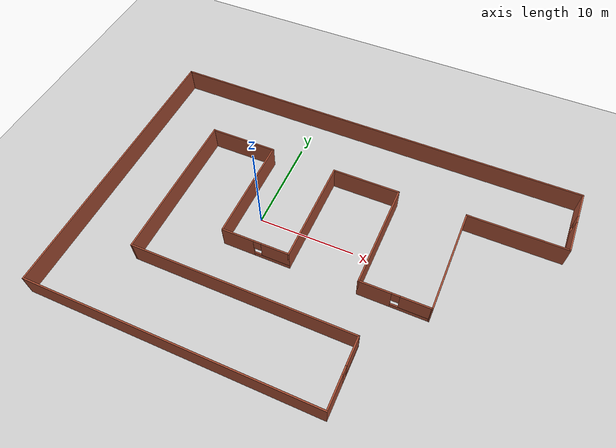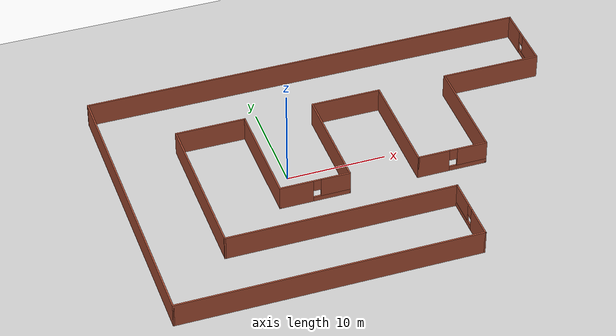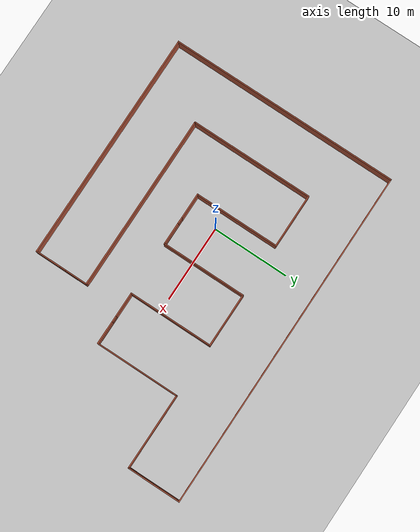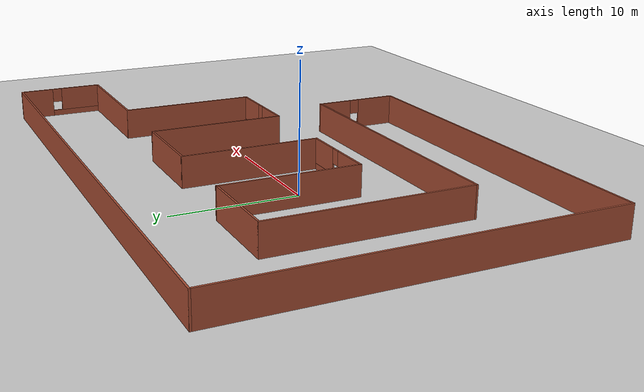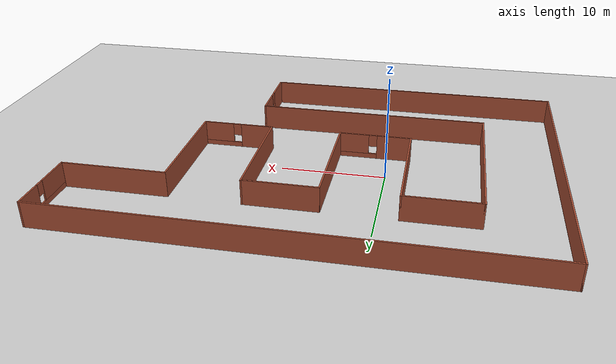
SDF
<sdf version="1.6">
 <world name="default">
  <light name="sun" type="directional">
   <pose>0 0 10 0 -0 0</pose>
   <diffuse>0.8 0.8 0.8 1</diffuse>
   <specular>0.2 0.2 0.2 1</specular>
   <attenuation>
    <range>1000</range>
    <constant>0.9</constant>
    <linear>0.01</linear>
    <quadratic>0.001</quadratic>
   </attenuation>
   <direction>-0.5 0.1 -0.9</direction>
  </light>
  <model name="ground_plane">
   <static>1</static>
   <link name="link">
    <collision name="collision">
     <geometry><plane><normal>0 0 1</normal><size>100 100</size></plane></geometry>
     <surface>
      <contact><collide_bitmask>65535</collide_bitmask></contact>
      <friction><ode><mu>100</mu><mu2>50</mu2></ode></friction>
     </surface>
    </collision>
    <visual name="visual">
     <cast_shadows>0</cast_shadows>
     <geometry><plane><normal>0 0 1</normal><size>100 100</size></plane></geometry>
     <material>
      <script><uri>file://media/materials/scripts/gazebo.material</uri><name>Gazebo/Grey</name></script>
     </material>
    </visual>
   </link>
  </model>
  <gravity>0 0 -9.8</gravity>
  <magnetic_field>6e-06 2.3e-05 -4.2e-05</magnetic_field>
  <atmosphere type="adiabatic"/>
  <physics name="default_physics" default="0" type="ode">
   <max_step_size>0.001</max_step_size>
   <real_time_factor>1</real_time_factor>
   <real_time_update_rate>1000</real_time_update_rate>
  </physics>
  <scene><ambient>0.4 0.4 0.4 1</ambient><background>0.7 0.7 0.7 1</background><shadows>1</shadows></scene>
  <spherical_coordinates>
   <surface_model>EARTH_WGS84</surface_model>
   <latitude_deg>0</latitude_deg>
   <longitude_deg>0</longitude_deg>
   <elevation>0</elevation>
   <heading_deg>0</heading_deg>
  </spherical_coordinates>
  <model name="building">
   <pose>6.48049 -0.882389 0 0 -0 0</pose>
   <link name="Wall_0">
    <collision name="Wall_0_Collision">
     <geometry><box><size>30.15 0.15 2.5</size></box></geometry>
     <pose>0 0 1.25 0 -0 0</pose>
    </collision>
    <visual name="Wall_0_Visual">
     <pose>0 0 1.25 0 -0 0</pose>
     <geometry><box><size>30.15 0.15 2.5</size></box></geometry>
     <material>
      <script><uri>file://media/materials/scripts/gazebo.material</uri><name>Gazebo/Bricks</name></script>
      <ambient>1 1 1 1</ambient>
     </material>
     <meta><layer>0</layer></meta>
    </visual>
    <pose>-22.5 0 0 0 0 -1.5708</pose>
   </link>
   <link name="Wall_11">
    <collision name="Wall_11_Collision">
     <geometry><box><size>7.15 0.15 2.5</size></box></geometry>
     <pose>0 0 1.25 0 -0 0</pose>
    </collision>
    <visual name="Wall_11_Visual">
     <pose>0 0 1.25 0 -0 0</pose>
     <geometry><box><size>7.15 0.15 2.5</size></box></geometry>
     <material>
      <script><uri>file://media/materials/scripts/gazebo.material</uri><name>Gazebo/Bricks</name></script>
      <ambient>1 1 1 1</ambient>
     </material>
     <meta><layer>0</layer></meta>
    </visual>
    <pose>-12 8 0 0 -0 0</pose>
   </link>
   <link name="Wall_13">
    <collision name="Wall_13_Collision">
     <geometry><box><size>11.15 0.15 2.5</size></box></geometry>
     <pose>0 0 1.25 0 -0 0</pose>
    </collision>
    <visual name="Wall_13_Visual">
     <pose>0 0 1.25 0 -0 0</pose>
     <geometry><box><size>11.15 0.15 2.5</size></box></geometry>
     <material>
      <script><uri>file://media/materials/scripts/gazebo.material</uri><name>Gazebo/Bricks</name></script>
      <ambient>1 1 1 1</ambient>
     </material>
     <meta><layer>0</layer></meta>
    </visual>
    <pose>-8.5 2.5 0 0 0 -1.5708</pose>
   </link>
   <link name="Wall_15">
    <pose>-5 -3 0 0 -0 0</pose>
    <visual name="Wall_15_Visual_0">
     <pose>-1.88147 0 1.25 0 -0 0</pose>
     <geometry><box><size>3.38706 0.15 2.5</size></box></geometry>
     <material>
      <script><uri>file://media/materials/scripts/gazebo.material</uri><name>Gazebo/Bricks</name></script>
      <ambient>1 1 1 1</ambient>
     </material>
     <meta><layer>0</layer></meta>
    </visual>
    <collision name="Wall_15_Collision_0">
     <geometry><box><size>3.38706 0.15 2.5</size></box></geometry>
     <pose>-1.88147 0 1.25 0 -0 0</pose>
    </collision>
    <visual name="Wall_15_Visual_1">
     <pose>1.69353 0 0.25 0 -0 0</pose>
     <geometry><box><size>3.76294 0.15 0.5</size></box></geometry>
     <material>
      <script><uri>file://media/materials/scripts/gazebo.material</uri><name>Gazebo/Bricks</name></script>
      <ambient>1 1 1 1</ambient>
     </material>
     <meta><layer>0</layer></meta>
    </visual>
    <collision name="Wall_15_Collision_1">
     <geometry><box><size>3.76294 0.15 0.5</size></box></geometry>
     <pose>1.69353 0 0.25 0 -0 0</pose>
    </collision>
    <visual name="Wall_15_Visual_2">
     <pose>2.09353 0 1.5 0 -0 0</pose>
     <geometry><box><size>2.96294 0.15 2</size></box></geometry>
     <material>
      <script><uri>file://media/materials/scripts/gazebo.material</uri><name>Gazebo/Bricks</name></script>
      <ambient>1 1 1 1</ambient>
     </material>
     <meta><layer>0</layer></meta>
    </visual>
    <collision name="Wall_15_Collision_2">
     <geometry><box><size>2.96294 0.15 2</size></box></geometry>
     <pose>2.09353 0 1.5 0 -0 0</pose>
    </collision>
    <visual name="Wall_15_Visual_3">
     <pose>0.212058 0 1.9 0 -0 0</pose>
     <geometry><box><size>0.8 0.15 1.2</size></box></geometry>
     <material>
      <script><uri>file://media/materials/scripts/gazebo.material</uri><name>Gazebo/Bricks</name></script>
      <ambient>1 1 1 1</ambient>
     </material>
     <meta><layer>0</layer></meta>
    </visual>
    <collision name="Wall_15_Collision_3">
     <geometry><box><size>0.8 0.15 1.2</size></box></geometry>
     <pose>0.212058 0 1.9 0 -0 0</pose>
    </collision>
   </link>
   <link name="Wall_17">
    <collision name="Wall_17_Collision">
     <geometry><box><size>11.15 0.15 2.5</size></box></geometry>
     <pose>0 0 1.25 0 -0 0</pose>
    </collision>
    <visual name="Wall_17_Visual">
     <pose>0 0 1.25 0 -0 0</pose>
     <geometry><box><size>11.15 0.15 2.5</size></box></geometry>
     <material>
      <script><uri>file://media/materials/scripts/gazebo.material</uri><name>Gazebo/Bricks</name></script>
      <ambient>1 1 1 1</ambient>
     </material>
     <meta><layer>0</layer></meta>
    </visual>
    <pose>-1.5 2.5 0 0 -0 1.5708</pose>
   </link>
   <link name="Wall_19">
    <collision name="Wall_19_Collision">
     <geometry><box><size>7.15 0.15 2.5</size></box></geometry>
     <pose>0 0 1.25 0 -0 0</pose>
    </collision>
    <visual name="Wall_19_Visual">
     <pose>0 0 1.25 0 -0 0</pose>
     <geometry><box><size>7.15 0.15 2.5</size></box></geometry>
     <material>
      <script><uri>file://media/materials/scripts/gazebo.material</uri><name>Gazebo/Bricks</name></script>
      <ambient>1 1 1 1</ambient>
     </material>
     <meta><layer>0</layer></meta>
    </visual>
    <pose>2 8 0 0 -0 0</pose>
   </link>
   <link name="Wall_2">
    <collision name="Wall_2_Collision">
     <geometry><box><size>30.15 0.15 2.5</size></box></geometry>
     <pose>0 0 1.25 0 -0 0</pose>
    </collision>
    <visual name="Wall_2_Visual">
     <pose>0 0 1.25 0 -0 0</pose>
     <geometry><box><size>30.15 0.15 2.5</size></box></geometry>
     <material>
      <script><uri>file://media/materials/scripts/gazebo.material</uri><name>Gazebo/Bricks</name></script>
      <ambient>1 1 1 1</ambient>
     </material>
     <meta><layer>0</layer></meta>
    </visual>
    <pose>-7.5 -15 0 0 -0 0</pose>
   </link>
   <link name="Wall_21">
    <collision name="Wall_21_Collision">
     <geometry><box><size>11.15 0.15 2.5</size></box></geometry>
     <pose>0 0 1.25 0 -0 0</pose>
    </collision>
    <visual name="Wall_21_Visual">
     <pose>0 0 1.25 0 -0 0</pose>
     <geometry><box><size>11.15 0.15 2.5</size></box></geometry>
     <material>
      <script><uri>file://media/materials/scripts/gazebo.material</uri><name>Gazebo/Bricks</name></script>
      <ambient>1 1 1 1</ambient>
     </material>
     <meta><layer>0</layer></meta>
    </visual>
    <pose>5.5 2.5 0 0 0 -1.5708</pose>
   </link>
   <link name="Wall_23">
    <pose>9 -3 0 0 -0 0</pose>
    <visual name="Wall_23_Visual_0">
     <pose>-1.94046 0 1.25 0 -0 0</pose>
     <geometry><box><size>3.26909 0.15 2.5</size></box></geometry>
     <material>
      <script><uri>file://media/materials/scripts/gazebo.material</uri><name>Gazebo/Bricks</name></script>
      <ambient>1 1 1 1</ambient>
     </material>
     <meta><layer>0</layer></meta>
    </visual>
    <collision name="Wall_23_Collision_0">
     <geometry><box><size>3.26909 0.15 2.5</size></box></geometry>
     <pose>-1.94046 0 1.25 0 -0 0</pose>
    </collision>
    <visual name="Wall_23_Visual_1">
     <pose>1.63454 0 0.25 0 -0 0</pose>
     <geometry><box><size>3.88091 0.15 0.5</size></box></geometry>
     <material>
      <script><uri>file://media/materials/scripts/gazebo.material</uri><name>Gazebo/Bricks</name></script>
      <ambient>1 1 1 1</ambient>
     </material>
     <meta><layer>0</layer></meta>
    </visual>
    <collision name="Wall_23_Collision_1">
     <geometry><box><size>3.88091 0.15 0.5</size></box></geometry>
     <pose>1.63454 0 0.25 0 -0 0</pose>
    </collision>
    <visual name="Wall_23_Visual_2">
     <pose>2.03454 0 1.5 0 -0 0</pose>
     <geometry><box><size>3.08091 0.15 2</size></box></geometry>
     <material>
      <script><uri>file://media/materials/scripts/gazebo.material</uri><name>Gazebo/Bricks</name></script>
      <ambient>1 1 1 1</ambient>
     </material>
     <meta><layer>0</layer></meta>
    </visual>
    <collision name="Wall_23_Collision_2">
     <geometry><box><size>3.08091 0.15 2</size></box></geometry>
     <pose>2.03454 0 1.5 0 -0 0</pose>
    </collision>
    <visual name="Wall_23_Visual_3">
     <pose>0.094088 0 1.9 0 -0 0</pose>
     <geometry><box><size>0.8 0.15 1.2</size></box></geometry>
     <material>
      <script><uri>file://media/materials/scripts/gazebo.material</uri><name>Gazebo/Bricks</name></script>
      <ambient>1 1 1 1</ambient>
     </material>
     <meta><layer>0</layer></meta>
    </visual>
    <collision name="Wall_23_Collision_3">
     <geometry><box><size>0.8 0.15 1.2</size></box></geometry>
     <pose>0.094088 0 1.9 0 -0 0</pose>
    </collision>
   </link>
   <link name="Wall_25">
    <collision name="Wall_25_Collision">
     <geometry><box><size>11.15 0.15 2.5</size></box></geometry>
     <pose>0 0 1.25 0 -0 0</pose>
    </collision>
    <visual name="Wall_25_Visual">
     <pose>0 0 1.25 0 -0 0</pose>
     <geometry><box><size>11.15 0.15 2.5</size></box></geometry>
     <material>
      <script><uri>file://media/materials/scripts/gazebo.material</uri><name>Gazebo/Bricks</name></script>
      <ambient>1 1 1 1</ambient>
     </material>
     <meta><layer>0</layer></meta>
    </visual>
    <pose>12.5 2.5 0 0 -0 1.5708</pose>
   </link>
   <link name="Wall_27">
    <collision name="Wall_27_Collision">
     <geometry><box><size>10.15 0.15 2.5</size></box></geometry>
     <pose>0 0 1.25 0 -0 0</pose>
    </collision>
    <visual name="Wall_27_Visual">
     <pose>0 0 1.25 0 -0 0</pose>
     <geometry><box><size>10.15 0.15 2.5</size></box></geometry>
     <material>
      <script><uri>file://media/materials/scripts/gazebo.material</uri><name>Gazebo/Bricks</name></script>
      <ambient>1 1 1 1</ambient>
     </material>
     <meta><layer>0</layer></meta>
    </visual>
    <pose>17.5 8 0 0 -0 0</pose>
   </link>
   <link name="Wall_29">
    <pose>22.5 11.5 0 0 0 -1.5708</pose>
    <visual name="Wall_29_Visual_0">
     <pose>-2.15998 0 1.25 0 -0 0</pose>
     <geometry><box><size>2.83005 0.15 2.5</size></box></geometry>
     <material>
      <script><uri>file://media/materials/scripts/gazebo.material</uri><name>Gazebo/Bricks</name></script>
      <ambient>1 1 1 1</ambient>
     </material>
     <meta><layer>0</layer></meta>
    </visual>
    <collision name="Wall_29_Collision_0">
     <geometry><box><size>2.83005 0.15 2.5</size></box></geometry>
     <pose>-2.15998 0 1.25 0 -0 0</pose>
    </collision>
    <visual name="Wall_29_Visual_1">
     <pose>1.41502 0 0.25 0 -0 0</pose>
     <geometry><box><size>4.31995 0.15 0.5</size></box></geometry>
     <material>
      <script><uri>file://media/materials/scripts/gazebo.material</uri><name>Gazebo/Bricks</name></script>
      <ambient>1 1 1 1</ambient>
     </material>
     <meta><layer>0</layer></meta>
    </visual>
    <collision name="Wall_29_Collision_1">
     <geometry><box><size>4.31995 0.15 0.5</size></box></geometry>
     <pose>1.41502 0 0.25 0 -0 0</pose>
    </collision>
    <visual name="Wall_29_Visual_2">
     <pose>1.81502 0 1.5 0 -0 0</pose>
     <geometry><box><size>3.51995 0.15 2</size></box></geometry>
     <material>
      <script><uri>file://media/materials/scripts/gazebo.material</uri><name>Gazebo/Bricks</name></script>
      <ambient>1 1 1 1</ambient>
     </material>
     <meta><layer>0</layer></meta>
    </visual>
    <collision name="Wall_29_Collision_2">
     <geometry><box><size>3.51995 0.15 2</size></box></geometry>
     <pose>1.81502 0 1.5 0 -0 0</pose>
    </collision>
    <visual name="Wall_29_Visual_3">
     <pose>-0.344954 0 1.9 0 -0 0</pose>
     <geometry><box><size>0.8 0.15 1.2</size></box></geometry>
     <material>
      <script><uri>file://media/materials/scripts/gazebo.material</uri><name>Gazebo/Bricks</name></script>
      <ambient>1 1 1 1</ambient>
     </material>
     <meta><layer>0</layer></meta>
    </visual>
    <collision name="Wall_29_Collision_3">
     <geometry><box><size>0.8 0.15 1.2</size></box></geometry>
     <pose>-0.344954 0 1.9 0 -0 0</pose>
    </collision>
   </link>
   <link name="Wall_4">
    <collision name="Wall_4_Collision">
     <geometry><box><size>45.15 0.15 2.5</size></box></geometry>
     <pose>0 0 1.25 0 -0 0</pose>
    </collision>
    <visual name="Wall_4_Visual">
     <pose>0 0 1.25 0 -0 0</pose>
     <geometry><box><size>45.15 0.15 2.5</size></box></geometry>
     <material>
      <script><uri>file://media/materials/scripts/gazebo.material</uri><name>Gazebo/Bricks</name></script>
      <ambient>1 1 1 1</ambient>
     </material>
     <meta><layer>0</layer></meta>
    </visual>
    <pose>0 15 0 0 -0 0</pose>
   </link>
   <link name="Wall_6">
    <pose>7.5 -11.5 0 0 -0 1.5708</pose>
    <visual name="Wall_6_Visual_0">
     <pose>-1.88338 0 1.25 0 -0 0</pose>
     <geometry><box><size>3.38324 0.15 2.5</size></box></geometry>
     <material>
      <script><uri>file://media/materials/scripts/gazebo.material</uri><name>Gazebo/Bricks</name></script>
      <ambient>1 1 1 1</ambient>
     </material>
     <meta><layer>0</layer></meta>
    </visual>
    <collision name="Wall_6_Collision_0">
     <geometry><box><size>3.38324 0.15 2.5</size></box></geometry>
     <pose>-1.88338 0 1.25 0 -0 0</pose>
    </collision>
    <visual name="Wall_6_Visual_1">
     <pose>1.69162 0 0.25 0 -0 0</pose>
     <geometry><box><size>3.76676 0.15 0.5</size></box></geometry>
     <material>
      <script><uri>file://media/materials/scripts/gazebo.material</uri><name>Gazebo/Bricks</name></script>
      <ambient>1 1 1 1</ambient>
     </material>
     <meta><layer>0</layer></meta>
    </visual>
    <collision name="Wall_6_Collision_1">
     <geometry><box><size>3.76676 0.15 0.5</size></box></geometry>
     <pose>1.69162 0 0.25 0 -0 0</pose>
    </collision>
    <visual name="Wall_6_Visual_2">
     <pose>2.09162 0 1.5 0 -0 0</pose>
     <geometry><box><size>2.96676 0.15 2</size></box></geometry>
     <material>
      <script><uri>file://media/materials/scripts/gazebo.material</uri><name>Gazebo/Bricks</name></script>
      <ambient>1 1 1 1</ambient>
     </material>
     <meta><layer>0</layer></meta>
    </visual>
    <collision name="Wall_6_Collision_2">
     <geometry><box><size>2.96676 0.15 2</size></box></geometry>
     <pose>2.09162 0 1.5 0 -0 0</pose>
    </collision>
    <visual name="Wall_6_Visual_3">
     <pose>0.208237 0 1.9 0 -0 0</pose>
     <geometry><box><size>0.8 0.15 1.2</size></box></geometry>
     <material>
      <script><uri>file://media/materials/scripts/gazebo.material</uri><name>Gazebo/Bricks</name></script>
      <ambient>1 1 1 1</ambient>
     </material>
     <meta><layer>0</layer></meta>
    </visual>
    <collision name="Wall_6_Collision_3">
     <geometry><box><size>0.8 0.15 1.2</size></box></geometry>
     <pose>0.208237 0 1.9 0 -0 0</pose>
    </collision>
   </link>
   <link name="Wall_7">
    <collision name="Wall_7_Collision">
     <geometry><box><size>23.15 0.15 2.5</size></box></geometry>
     <pose>0 0 1.25 0 -0 0</pose>
    </collision>
    <visual name="Wall_7_Visual">
     <pose>0 0 1.25 0 -0 0</pose>
     <geometry><box><size>23.15 0.15 2.5</size></box></geometry>
     <material>
      <script><uri>file://media/materials/scripts/gazebo.material</uri><name>Gazebo/Bricks</name></script>
      <ambient>1 1 1 1</ambient>
     </material>
     <meta><layer>0</layer></meta>
    </visual>
    <pose>-4 -8 0 0 -0 3.14159</pose>
   </link>
   <link name="Wall_9">
    <collision name="Wall_9_Collision">
     <geometry><box><size>16.15 0.15 2.5</size></box></geometry>
     <pose>0 0 1.25 0 -0 0</pose>
    </collision>
    <visual name="Wall_9_Visual">
     <pose>0 0 1.25 0 -0 0</pose>
     <geometry><box><size>16.15 0.15 2.5</size></box></geometry>
     <material>
      <script><uri>file://media/materials/scripts/gazebo.material</uri><name>Gazebo/Bricks</name></script>
      <ambient>1 1 1 1</ambient>
     </material>
     <meta><layer>0</layer></meta>
    </visual>
    <pose>-15.5 0 0 0 -0 1.5708</pose>
   </link>
   <static>1</static>
  </model>
 </world>
</sdf>
